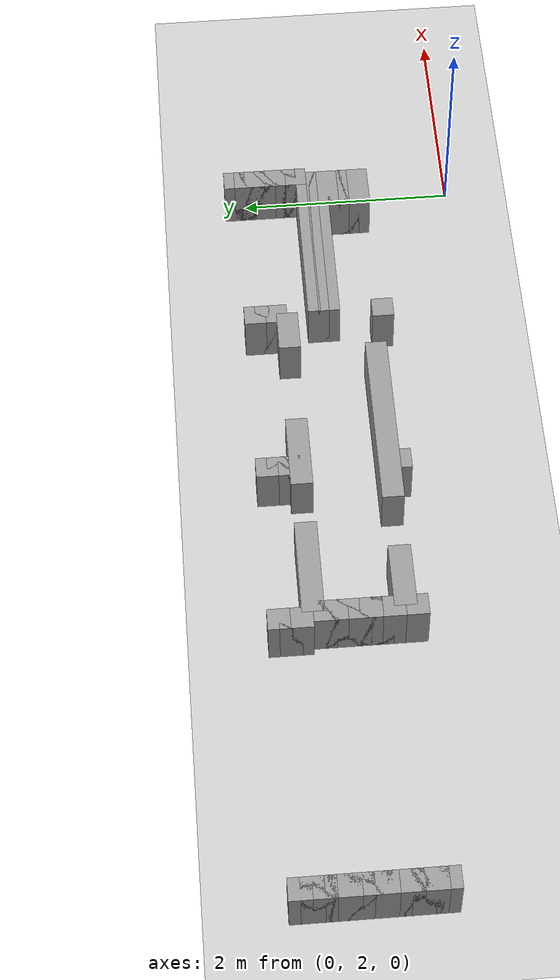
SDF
<sdf version="1.6">
 <world name="GridMap">
  <include><uri>model://sun</uri></include>
  <include><uri>model://ground_plane</uri></include>
  <model name="GridMap">
   <link name="Wall_(17.0,28.0)">
    <collision name="Wall_(17.0,28.0)_Collision">
     <geometry><box><size>0.2 0.2 0.5</size></box></geometry>
     <pose>-1.7000000000000002 2.8000000000000003 0.25 0 -0 0</pose>
    </collision>
    <inertial>
     <mass>0.5</mass>
     <pose>0 0.01 0 0 0 0</pose>
     <inertia><ixx>0.004</ixx><ixy>0.001</ixy><ixz>0</ixz><iyy>0.006</iyy><iyz>0</iyz><izz>0.007</izz></inertia>
    </inertial>
    <visual name="Wall_(17.0,28.0)_Visual">
     <geometry><box><size>0.2 0.2 0.5</size></box></geometry>
     <pose>-1.7000000000000002 2.8000000000000003 0.25 0 -0 0</pose>
     <material>
      <script><uri>file://media/materials/scripts/gazebo.material</uri><name>Gazebo/Grey</name></script>
      <ambient>1 1 1 1</ambient>
     </material>
     <meta><layer>0</layer></meta>
    </visual>
   </link>
   <link name="Wall_(34.0,28.0)">
    <collision name="Wall_(34.0,28.0)_Collision">
     <geometry><box><size>0.2 0.2 0.5</size></box></geometry>
     <pose>-3.4000000000000004 2.8000000000000003 0.25 0 -0 0</pose>
    </collision>
    <inertial>
     <mass>0.5</mass>
     <pose>0 0.01 0 0 0 0</pose>
     <inertia><ixx>0.004</ixx><ixy>0.001</ixy><ixz>0</ixz><iyy>0.006</iyy><iyz>0</iyz><izz>0.007</izz></inertia>
    </inertial>
    <visual name="Wall_(34.0,28.0)_Visual">
     <geometry><box><size>0.2 0.2 0.5</size></box></geometry>
     <pose>-3.4000000000000004 2.8000000000000003 0.25 0 -0 0</pose>
     <material>
      <script><uri>file://media/materials/scripts/gazebo.material</uri><name>Gazebo/Grey</name></script>
      <ambient>1 1 1 1</ambient>
     </material>
     <meta><layer>0</layer></meta>
    </visual>
   </link>
   <link name="Wall_(49.0,28.0)">
    <collision name="Wall_(49.0,28.0)_Collision">
     <geometry><box><size>0.2 0.2 0.5</size></box></geometry>
     <pose>-4.9 2.8000000000000003 0.25 0 -0 0</pose>
    </collision>
    <inertial>
     <mass>0.5</mass>
     <pose>0 0.01 0 0 0 0</pose>
     <inertia><ixx>0.004</ixx><ixy>0.001</ixy><ixz>0</ixz><iyy>0.006</iyy><iyz>0</iyz><izz>0.007</izz></inertia>
    </inertial>
    <visual name="Wall_(49.0,28.0)_Visual">
     <geometry><box><size>0.2 0.2 0.5</size></box></geometry>
     <pose>-4.9 2.8000000000000003 0.25 0 -0 0</pose>
     <material>
      <script><uri>file://media/materials/scripts/gazebo.material</uri><name>Gazebo/Grey</name></script>
      <ambient>1 1 1 1</ambient>
     </material>
     <meta><layer>0</layer></meta>
    </visual>
   </link>
   <link name="Wall_(74.0,28.0)">
    <collision name="Wall_(74.0,28.0)_Collision">
     <geometry><box><size>0.2 0.2 0.5</size></box></geometry>
     <pose>-7.4 2.8000000000000003 0.25 0 -0 0</pose>
    </collision>
    <inertial>
     <mass>0.5</mass>
     <pose>0 0.01 0 0 0 0</pose>
     <inertia><ixx>0.004</ixx><ixy>0.001</ixy><ixz>0</ixz><iyy>0.006</iyy><iyz>0</iyz><izz>0.007</izz></inertia>
    </inertial>
    <visual name="Wall_(74.0,28.0)_Visual">
     <geometry><box><size>0.2 0.2 0.5</size></box></geometry>
     <pose>-7.4 2.8000000000000003 0.25 0 -0 0</pose>
     <material>
      <script><uri>file://media/materials/scripts/gazebo.material</uri><name>Gazebo/Grey</name></script>
      <ambient>1 1 1 1</ambient>
     </material>
     <meta><layer>0</layer></meta>
    </visual>
   </link>
   <link name="Wall_(2.0,29.0)">
    <collision name="Wall_(2.0,29.0)_Collision">
     <geometry><box><size>0.4 0.2 0.5</size></box></geometry>
     <pose>-0.2 2.9000000000000004 0.25 0 -0 0</pose>
    </collision>
    <inertial>
     <mass>0.5</mass>
     <pose>0 0.01 0 0 0 0</pose>
     <inertia><ixx>0.004</ixx><ixy>0.001</ixy><ixz>0</ixz><iyy>0.006</iyy><iyz>0</iyz><izz>0.007</izz></inertia>
    </inertial>
    <visual name="Wall_(2.0,29.0)_Visual">
     <geometry><box><size>0.4 0.2 0.5</size></box></geometry>
     <pose>-0.2 2.9000000000000004 0.25 0 -0 0</pose>
     <material>
      <script><uri>file://media/materials/scripts/gazebo.material</uri><name>Gazebo/Grey</name></script>
      <ambient>1 1 1 1</ambient>
     </material>
     <meta><layer>0</layer></meta>
    </visual>
   </link>
   <link name="Wall_(29.5,29.0)">
    <collision name="Wall_(29.5,29.0)_Collision">
     <geometry><box><size>1.7000000000000002 0.2 0.5</size></box></geometry>
     <pose>-2.95 2.9000000000000004 0.25 0 -0 0</pose>
    </collision>
    <inertial>
     <mass>0.5</mass>
     <pose>0 0.01 0 0 0 0</pose>
     <inertia><ixx>0.004</ixx><ixy>0.001</ixy><ixz>0</ixz><iyy>0.006</iyy><iyz>0</iyz><izz>0.007</izz></inertia>
    </inertial>
    <visual name="Wall_(29.5,29.0)_Visual">
     <geometry><box><size>1.7000000000000002 0.2 0.5</size></box></geometry>
     <pose>-2.95 2.9000000000000004 0.25 0 -0 0</pose>
     <material>
      <script><uri>file://media/materials/scripts/gazebo.material</uri><name>Gazebo/Grey</name></script>
      <ambient>1 1 1 1</ambient>
     </material>
     <meta><layer>0</layer></meta>
    </visual>
   </link>
   <link name="Wall_(46.0,29.0)">
    <collision name="Wall_(46.0,29.0)_Collision">
     <geometry><box><size>0.6000000000000001 0.2 0.5</size></box></geometry>
     <pose>-4.6000000000000005 2.9000000000000004 0.25 0 -0 0</pose>
    </collision>
    <inertial>
     <mass>0.5</mass>
     <pose>0 0.01 0 0 0 0</pose>
     <inertia><ixx>0.004</ixx><ixy>0.001</ixy><ixz>0</ixz><iyy>0.006</iyy><iyz>0</iyz><izz>0.007</izz></inertia>
    </inertial>
    <visual name="Wall_(46.0,29.0)_Visual">
     <geometry><box><size>0.6000000000000001 0.2 0.5</size></box></geometry>
     <pose>-4.6000000000000005 2.9000000000000004 0.25 0 -0 0</pose>
     <material>
      <script><uri>file://media/materials/scripts/gazebo.material</uri><name>Gazebo/Grey</name></script>
      <ambient>1 1 1 1</ambient>
     </material>
     <meta><layer>0</layer></meta>
    </visual>
   </link>
   <link name="Wall_(74.0,29.0)">
    <collision name="Wall_(74.0,29.0)_Collision">
     <geometry><box><size>0.2 0.2 0.5</size></box></geometry>
     <pose>-7.4 2.9000000000000004 0.25 0 -0 0</pose>
    </collision>
    <inertial>
     <mass>0.5</mass>
     <pose>0 0.01 0 0 0 0</pose>
     <inertia><ixx>0.004</ixx><ixy>0.001</ixy><ixz>0</ixz><iyy>0.006</iyy><iyz>0</iyz><izz>0.007</izz></inertia>
    </inertial>
    <visual name="Wall_(74.0,29.0)_Visual">
     <geometry><box><size>0.2 0.2 0.5</size></box></geometry>
     <pose>-7.4 2.9000000000000004 0.25 0 -0 0</pose>
     <material>
      <script><uri>file://media/materials/scripts/gazebo.material</uri><name>Gazebo/Grey</name></script>
      <ambient>1 1 1 1</ambient>
     </material>
     <meta><layer>0</layer></meta>
    </visual>
   </link>
   <link name="Wall_(2.0,30.0)">
    <collision name="Wall_(2.0,30.0)_Collision">
     <geometry><box><size>0.4 0.2 0.5</size></box></geometry>
     <pose>-0.2 3.0 0.25 0 -0 0</pose>
    </collision>
    <inertial>
     <mass>0.5</mass>
     <pose>0 0.01 0 0 0 0</pose>
     <inertia><ixx>0.004</ixx><ixy>0.001</ixy><ixz>0</ixz><iyy>0.006</iyy><iyz>0</iyz><izz>0.007</izz></inertia>
    </inertial>
    <visual name="Wall_(2.0,30.0)_Visual">
     <geometry><box><size>0.4 0.2 0.5</size></box></geometry>
     <pose>-0.2 3.0 0.25 0 -0 0</pose>
     <material>
      <script><uri>file://media/materials/scripts/gazebo.material</uri><name>Gazebo/Grey</name></script>
      <ambient>1 1 1 1</ambient>
     </material>
     <meta><layer>0</layer></meta>
    </visual>
   </link>
   <link name="Wall_(49.0,30.0)">
    <collision name="Wall_(49.0,30.0)_Collision">
     <geometry><box><size>0.2 0.2 0.5</size></box></geometry>
     <pose>-4.9 3.0 0.25 0 -0 0</pose>
    </collision>
    <inertial>
     <mass>0.5</mass>
     <pose>0 0.01 0 0 0 0</pose>
     <inertia><ixx>0.004</ixx><ixy>0.001</ixy><ixz>0</ixz><iyy>0.006</iyy><iyz>0</iyz><izz>0.007</izz></inertia>
    </inertial>
    <visual name="Wall_(49.0,30.0)_Visual">
     <geometry><box><size>0.2 0.2 0.5</size></box></geometry>
     <pose>-4.9 3.0 0.25 0 -0 0</pose>
     <material>
      <script><uri>file://media/materials/scripts/gazebo.material</uri><name>Gazebo/Grey</name></script>
      <ambient>1 1 1 1</ambient>
     </material>
     <meta><layer>0</layer></meta>
    </visual>
   </link>
   <link name="Wall_(74.0,30.0)">
    <collision name="Wall_(74.0,30.0)_Collision">
     <geometry><box><size>0.2 0.2 0.5</size></box></geometry>
     <pose>-7.4 3.0 0.25 0 -0 0</pose>
    </collision>
    <inertial>
     <mass>0.5</mass>
     <pose>0 0.01 0 0 0 0</pose>
     <inertia><ixx>0.004</ixx><ixy>0.001</ixy><ixz>0</ixz><iyy>0.006</iyy><iyz>0</iyz><izz>0.007</izz></inertia>
    </inertial>
    <visual name="Wall_(74.0,30.0)_Visual">
     <geometry><box><size>0.2 0.2 0.5</size></box></geometry>
     <pose>-7.4 3.0 0.25 0 -0 0</pose>
     <material>
      <script><uri>file://media/materials/scripts/gazebo.material</uri><name>Gazebo/Grey</name></script>
      <ambient>1 1 1 1</ambient>
     </material>
     <meta><layer>0</layer></meta>
    </visual>
   </link>
   <link name="Wall_(2.0,31.0)">
    <collision name="Wall_(2.0,31.0)_Collision">
     <geometry><box><size>0.4 0.2 0.5</size></box></geometry>
     <pose>-0.2 3.1 0.25 0 -0 0</pose>
    </collision>
    <inertial>
     <mass>0.5</mass>
     <pose>0 0.01 0 0 0 0</pose>
     <inertia><ixx>0.004</ixx><ixy>0.001</ixy><ixz>0</ixz><iyy>0.006</iyy><iyz>0</iyz><izz>0.007</izz></inertia>
    </inertial>
    <visual name="Wall_(2.0,31.0)_Visual">
     <geometry><box><size>0.4 0.2 0.5</size></box></geometry>
     <pose>-0.2 3.1 0.25 0 -0 0</pose>
     <material>
      <script><uri>file://media/materials/scripts/gazebo.material</uri><name>Gazebo/Grey</name></script>
      <ambient>1 1 1 1</ambient>
     </material>
     <meta><layer>0</layer></meta>
    </visual>
   </link>
   <link name="Wall_(49.0,31.0)">
    <collision name="Wall_(49.0,31.0)_Collision">
     <geometry><box><size>0.2 0.2 0.5</size></box></geometry>
     <pose>-4.9 3.1 0.25 0 -0 0</pose>
    </collision>
    <inertial>
     <mass>0.5</mass>
     <pose>0 0.01 0 0 0 0</pose>
     <inertia><ixx>0.004</ixx><ixy>0.001</ixy><ixz>0</ixz><iyy>0.006</iyy><iyz>0</iyz><izz>0.007</izz></inertia>
    </inertial>
    <visual name="Wall_(49.0,31.0)_Visual">
     <geometry><box><size>0.2 0.2 0.5</size></box></geometry>
     <pose>-4.9 3.1 0.25 0 -0 0</pose>
     <material>
      <script><uri>file://media/materials/scripts/gazebo.material</uri><name>Gazebo/Grey</name></script>
      <ambient>1 1 1 1</ambient>
     </material>
     <meta><layer>0</layer></meta>
    </visual>
   </link>
   <link name="Wall_(74.0,31.0)">
    <collision name="Wall_(74.0,31.0)_Collision">
     <geometry><box><size>0.2 0.2 0.5</size></box></geometry>
     <pose>-7.4 3.1 0.25 0 -0 0</pose>
    </collision>
    <inertial>
     <mass>0.5</mass>
     <pose>0 0.01 0 0 0 0</pose>
     <inertia><ixx>0.004</ixx><ixy>0.001</ixy><ixz>0</ixz><iyy>0.006</iyy><iyz>0</iyz><izz>0.007</izz></inertia>
    </inertial>
    <visual name="Wall_(74.0,31.0)_Visual">
     <geometry><box><size>0.2 0.2 0.5</size></box></geometry>
     <pose>-7.4 3.1 0.25 0 -0 0</pose>
     <material>
      <script><uri>file://media/materials/scripts/gazebo.material</uri><name>Gazebo/Grey</name></script>
      <ambient>1 1 1 1</ambient>
     </material>
     <meta><layer>0</layer></meta>
    </visual>
   </link>
   <link name="Wall_(2.0,32.0)">
    <collision name="Wall_(2.0,32.0)_Collision">
     <geometry><box><size>0.4 0.2 0.5</size></box></geometry>
     <pose>-0.2 3.2 0.25 0 -0 0</pose>
    </collision>
    <inertial>
     <mass>0.5</mass>
     <pose>0 0.01 0 0 0 0</pose>
     <inertia><ixx>0.004</ixx><ixy>0.001</ixy><ixz>0</ixz><iyy>0.006</iyy><iyz>0</iyz><izz>0.007</izz></inertia>
    </inertial>
    <visual name="Wall_(2.0,32.0)_Visual">
     <geometry><box><size>0.4 0.2 0.5</size></box></geometry>
     <pose>-0.2 3.2 0.25 0 -0 0</pose>
     <material>
      <script><uri>file://media/materials/scripts/gazebo.material</uri><name>Gazebo/Grey</name></script>
      <ambient>1 1 1 1</ambient>
     </material>
     <meta><layer>0</layer></meta>
    </visual>
   </link>
   <link name="Wall_(49.0,32.0)">
    <collision name="Wall_(49.0,32.0)_Collision">
     <geometry><box><size>0.2 0.2 0.5</size></box></geometry>
     <pose>-4.9 3.2 0.25 0 -0 0</pose>
    </collision>
    <inertial>
     <mass>0.5</mass>
     <pose>0 0.01 0 0 0 0</pose>
     <inertia><ixx>0.004</ixx><ixy>0.001</ixy><ixz>0</ixz><iyy>0.006</iyy><iyz>0</iyz><izz>0.007</izz></inertia>
    </inertial>
    <visual name="Wall_(49.0,32.0)_Visual">
     <geometry><box><size>0.2 0.2 0.5</size></box></geometry>
     <pose>-4.9 3.2 0.25 0 -0 0</pose>
     <material>
      <script><uri>file://media/materials/scripts/gazebo.material</uri><name>Gazebo/Grey</name></script>
      <ambient>1 1 1 1</ambient>
     </material>
     <meta><layer>0</layer></meta>
    </visual>
   </link>
   <link name="Wall_(74.0,32.0)">
    <collision name="Wall_(74.0,32.0)_Collision">
     <geometry><box><size>0.2 0.2 0.5</size></box></geometry>
     <pose>-7.4 3.2 0.25 0 -0 0</pose>
    </collision>
    <inertial>
     <mass>0.5</mass>
     <pose>0 0.01 0 0 0 0</pose>
     <inertia><ixx>0.004</ixx><ixy>0.001</ixy><ixz>0</ixz><iyy>0.006</iyy><iyz>0</iyz><izz>0.007</izz></inertia>
    </inertial>
    <visual name="Wall_(74.0,32.0)_Visual">
     <geometry><box><size>0.2 0.2 0.5</size></box></geometry>
     <pose>-7.4 3.2 0.25 0 -0 0</pose>
     <material>
      <script><uri>file://media/materials/scripts/gazebo.material</uri><name>Gazebo/Grey</name></script>
      <ambient>1 1 1 1</ambient>
     </material>
     <meta><layer>0</layer></meta>
    </visual>
   </link>
   <link name="Wall_(8.5,33.0)">
    <collision name="Wall_(8.5,33.0)_Collision">
     <geometry><box><size>1.7000000000000002 0.2 0.5</size></box></geometry>
     <pose>-0.8500000000000001 3.3000000000000003 0.25 0 -0 0</pose>
    </collision>
    <inertial>
     <mass>0.5</mass>
     <pose>0 0.01 0 0 0 0</pose>
     <inertia><ixx>0.004</ixx><ixy>0.001</ixy><ixz>0</ixz><iyy>0.006</iyy><iyz>0</iyz><izz>0.007</izz></inertia>
    </inertial>
    <visual name="Wall_(8.5,33.0)_Visual">
     <geometry><box><size>1.7000000000000002 0.2 0.5</size></box></geometry>
     <pose>-0.8500000000000001 3.3000000000000003 0.25 0 -0 0</pose>
     <material>
      <script><uri>file://media/materials/scripts/gazebo.material</uri><name>Gazebo/Grey</name></script>
      <ambient>1 1 1 1</ambient>
     </material>
     <meta><layer>0</layer></meta>
    </visual>
   </link>
   <link name="Wall_(49.0,33.0)">
    <collision name="Wall_(49.0,33.0)_Collision">
     <geometry><box><size>0.2 0.2 0.5</size></box></geometry>
     <pose>-4.9 3.3000000000000003 0.25 0 -0 0</pose>
    </collision>
    <inertial>
     <mass>0.5</mass>
     <pose>0 0.01 0 0 0 0</pose>
     <inertia><ixx>0.004</ixx><ixy>0.001</ixy><ixz>0</ixz><iyy>0.006</iyy><iyz>0</iyz><izz>0.007</izz></inertia>
    </inertial>
    <visual name="Wall_(49.0,33.0)_Visual">
     <geometry><box><size>0.2 0.2 0.5</size></box></geometry>
     <pose>-4.9 3.3000000000000003 0.25 0 -0 0</pose>
     <material>
      <script><uri>file://media/materials/scripts/gazebo.material</uri><name>Gazebo/Grey</name></script>
      <ambient>1 1 1 1</ambient>
     </material>
     <meta><layer>0</layer></meta>
    </visual>
   </link>
   <link name="Wall_(74.0,33.0)">
    <collision name="Wall_(74.0,33.0)_Collision">
     <geometry><box><size>0.2 0.2 0.5</size></box></geometry>
     <pose>-7.4 3.3000000000000003 0.25 0 -0 0</pose>
    </collision>
    <inertial>
     <mass>0.5</mass>
     <pose>0 0.01 0 0 0 0</pose>
     <inertia><ixx>0.004</ixx><ixy>0.001</ixy><ixz>0</ixz><iyy>0.006</iyy><iyz>0</iyz><izz>0.007</izz></inertia>
    </inertial>
    <visual name="Wall_(74.0,33.0)_Visual">
     <geometry><box><size>0.2 0.2 0.5</size></box></geometry>
     <pose>-7.4 3.3000000000000003 0.25 0 -0 0</pose>
     <material>
      <script><uri>file://media/materials/scripts/gazebo.material</uri><name>Gazebo/Grey</name></script>
      <ambient>1 1 1 1</ambient>
     </material>
     <meta><layer>0</layer></meta>
    </visual>
   </link>
   <link name="Wall_(8.5,34.0)">
    <collision name="Wall_(8.5,34.0)_Collision">
     <geometry><box><size>1.7000000000000002 0.2 0.5</size></box></geometry>
     <pose>-0.8500000000000001 3.4000000000000004 0.25 0 -0 0</pose>
    </collision>
    <inertial>
     <mass>0.5</mass>
     <pose>0 0.01 0 0 0 0</pose>
     <inertia><ixx>0.004</ixx><ixy>0.001</ixy><ixz>0</ixz><iyy>0.006</iyy><iyz>0</iyz><izz>0.007</izz></inertia>
    </inertial>
    <visual name="Wall_(8.5,34.0)_Visual">
     <geometry><box><size>1.7000000000000002 0.2 0.5</size></box></geometry>
     <pose>-0.8500000000000001 3.4000000000000004 0.25 0 -0 0</pose>
     <material>
      <script><uri>file://media/materials/scripts/gazebo.material</uri><name>Gazebo/Grey</name></script>
      <ambient>1 1 1 1</ambient>
     </material>
     <meta><layer>0</layer></meta>
    </visual>
   </link>
   <link name="Wall_(49.0,34.0)">
    <collision name="Wall_(49.0,34.0)_Collision">
     <geometry><box><size>0.2 0.2 0.5</size></box></geometry>
     <pose>-4.9 3.4000000000000004 0.25 0 -0 0</pose>
    </collision>
    <inertial>
     <mass>0.5</mass>
     <pose>0 0.01 0 0 0 0</pose>
     <inertia><ixx>0.004</ixx><ixy>0.001</ixy><ixz>0</ixz><iyy>0.006</iyy><iyz>0</iyz><izz>0.007</izz></inertia>
    </inertial>
    <visual name="Wall_(49.0,34.0)_Visual">
     <geometry><box><size>0.2 0.2 0.5</size></box></geometry>
     <pose>-4.9 3.4000000000000004 0.25 0 -0 0</pose>
     <material>
      <script><uri>file://media/materials/scripts/gazebo.material</uri><name>Gazebo/Grey</name></script>
      <ambient>1 1 1 1</ambient>
     </material>
     <meta><layer>0</layer></meta>
    </visual>
   </link>
   <link name="Wall_(74.0,34.0)">
    <collision name="Wall_(74.0,34.0)_Collision">
     <geometry><box><size>0.2 0.2 0.5</size></box></geometry>
     <pose>-7.4 3.4000000000000004 0.25 0 -0 0</pose>
    </collision>
    <inertial>
     <mass>0.5</mass>
     <pose>0 0.01 0 0 0 0</pose>
     <inertia><ixx>0.004</ixx><ixy>0.001</ixy><ixz>0</ixz><iyy>0.006</iyy><iyz>0</iyz><izz>0.007</izz></inertia>
    </inertial>
    <visual name="Wall_(74.0,34.0)_Visual">
     <geometry><box><size>0.2 0.2 0.5</size></box></geometry>
     <pose>-7.4 3.4000000000000004 0.25 0 -0 0</pose>
     <material>
      <script><uri>file://media/materials/scripts/gazebo.material</uri><name>Gazebo/Grey</name></script>
      <ambient>1 1 1 1</ambient>
     </material>
     <meta><layer>0</layer></meta>
    </visual>
   </link>
   <link name="Wall_(0.5,35.0)">
    <collision name="Wall_(0.5,35.0)_Collision">
     <geometry><box><size>0.2 0.2 0.5</size></box></geometry>
     <pose>-0.05 3.5 0.25 0 -0 0</pose>
    </collision>
    <inertial>
     <mass>0.5</mass>
     <pose>0 0.01 0 0 0 0</pose>
     <inertia><ixx>0.004</ixx><ixy>0.001</ixy><ixz>0</ixz><iyy>0.006</iyy><iyz>0</iyz><izz>0.007</izz></inertia>
    </inertial>
    <visual name="Wall_(0.5,35.0)_Visual">
     <geometry><box><size>0.2 0.2 0.5</size></box></geometry>
     <pose>-0.05 3.5 0.25 0 -0 0</pose>
     <material>
      <script><uri>file://media/materials/scripts/gazebo.material</uri><name>Gazebo/Grey</name></script>
      <ambient>1 1 1 1</ambient>
     </material>
     <meta><layer>0</layer></meta>
    </visual>
   </link>
   <link name="Wall_(49.0,35.0)">
    <collision name="Wall_(49.0,35.0)_Collision">
     <geometry><box><size>0.2 0.2 0.5</size></box></geometry>
     <pose>-4.9 3.5 0.25 0 -0 0</pose>
    </collision>
    <inertial>
     <mass>0.5</mass>
     <pose>0 0.01 0 0 0 0</pose>
     <inertia><ixx>0.004</ixx><ixy>0.001</ixy><ixz>0</ixz><iyy>0.006</iyy><iyz>0</iyz><izz>0.007</izz></inertia>
    </inertial>
    <visual name="Wall_(49.0,35.0)_Visual">
     <geometry><box><size>0.2 0.2 0.5</size></box></geometry>
     <pose>-4.9 3.5 0.25 0 -0 0</pose>
     <material>
      <script><uri>file://media/materials/scripts/gazebo.material</uri><name>Gazebo/Grey</name></script>
      <ambient>1 1 1 1</ambient>
     </material>
     <meta><layer>0</layer></meta>
    </visual>
   </link>
   <link name="Wall_(74.0,35.0)">
    <collision name="Wall_(74.0,35.0)_Collision">
     <geometry><box><size>0.2 0.2 0.5</size></box></geometry>
     <pose>-7.4 3.5 0.25 0 -0 0</pose>
    </collision>
    <inertial>
     <mass>0.5</mass>
     <pose>0 0.01 0 0 0 0</pose>
     <inertia><ixx>0.004</ixx><ixy>0.001</ixy><ixz>0</ixz><iyy>0.006</iyy><iyz>0</iyz><izz>0.007</izz></inertia>
    </inertial>
    <visual name="Wall_(74.0,35.0)_Visual">
     <geometry><box><size>0.2 0.2 0.5</size></box></geometry>
     <pose>-7.4 3.5 0.25 0 -0 0</pose>
     <material>
      <script><uri>file://media/materials/scripts/gazebo.material</uri><name>Gazebo/Grey</name></script>
      <ambient>1 1 1 1</ambient>
     </material>
     <meta><layer>0</layer></meta>
    </visual>
   </link>
   <link name="Wall_(0.5,36.0)">
    <collision name="Wall_(0.5,36.0)_Collision">
     <geometry><box><size>0.2 0.2 0.5</size></box></geometry>
     <pose>-0.05 3.6 0.25 0 -0 0</pose>
    </collision>
    <inertial>
     <mass>0.5</mass>
     <pose>0 0.01 0 0 0 0</pose>
     <inertia><ixx>0.004</ixx><ixy>0.001</ixy><ixz>0</ixz><iyy>0.006</iyy><iyz>0</iyz><izz>0.007</izz></inertia>
    </inertial>
    <visual name="Wall_(0.5,36.0)_Visual">
     <geometry><box><size>0.2 0.2 0.5</size></box></geometry>
     <pose>-0.05 3.6 0.25 0 -0 0</pose>
     <material>
      <script><uri>file://media/materials/scripts/gazebo.material</uri><name>Gazebo/Grey</name></script>
      <ambient>1 1 1 1</ambient>
     </material>
     <meta><layer>0</layer></meta>
    </visual>
   </link>
   <link name="Wall_(49.0,36.0)">
    <collision name="Wall_(49.0,36.0)_Collision">
     <geometry><box><size>0.2 0.2 0.5</size></box></geometry>
     <pose>-4.9 3.6 0.25 0 -0 0</pose>
    </collision>
    <inertial>
     <mass>0.5</mass>
     <pose>0 0.01 0 0 0 0</pose>
     <inertia><ixx>0.004</ixx><ixy>0.001</ixy><ixz>0</ixz><iyy>0.006</iyy><iyz>0</iyz><izz>0.007</izz></inertia>
    </inertial>
    <visual name="Wall_(49.0,36.0)_Visual">
     <geometry><box><size>0.2 0.2 0.5</size></box></geometry>
     <pose>-4.9 3.6 0.25 0 -0 0</pose>
     <material>
      <script><uri>file://media/materials/scripts/gazebo.material</uri><name>Gazebo/Grey</name></script>
      <ambient>1 1 1 1</ambient>
     </material>
     <meta><layer>0</layer></meta>
    </visual>
   </link>
   <link name="Wall_(74.0,36.0)">
    <collision name="Wall_(74.0,36.0)_Collision">
     <geometry><box><size>0.2 0.2 0.5</size></box></geometry>
     <pose>-7.4 3.6 0.25 0 -0 0</pose>
    </collision>
    <inertial>
     <mass>0.5</mass>
     <pose>0 0.01 0 0 0 0</pose>
     <inertia><ixx>0.004</ixx><ixy>0.001</ixy><ixz>0</ixz><iyy>0.006</iyy><iyz>0</iyz><izz>0.007</izz></inertia>
    </inertial>
    <visual name="Wall_(74.0,36.0)_Visual">
     <geometry><box><size>0.2 0.2 0.5</size></box></geometry>
     <pose>-7.4 3.6 0.25 0 -0 0</pose>
     <material>
      <script><uri>file://media/materials/scripts/gazebo.material</uri><name>Gazebo/Grey</name></script>
      <ambient>1 1 1 1</ambient>
     </material>
     <meta><layer>0</layer></meta>
    </visual>
   </link>
   <link name="Wall_(0.5,37.0)">
    <collision name="Wall_(0.5,37.0)_Collision">
     <geometry><box><size>0.2 0.2 0.5</size></box></geometry>
     <pose>-0.05 3.7 0.25 0 -0 0</pose>
    </collision>
    <inertial>
     <mass>0.5</mass>
     <pose>0 0.01 0 0 0 0</pose>
     <inertia><ixx>0.004</ixx><ixy>0.001</ixy><ixz>0</ixz><iyy>0.006</iyy><iyz>0</iyz><izz>0.007</izz></inertia>
    </inertial>
    <visual name="Wall_(0.5,37.0)_Visual">
     <geometry><box><size>0.2 0.2 0.5</size></box></geometry>
     <pose>-0.05 3.7 0.25 0 -0 0</pose>
     <material>
      <script><uri>file://media/materials/scripts/gazebo.material</uri><name>Gazebo/Grey</name></script>
      <ambient>1 1 1 1</ambient>
     </material>
     <meta><layer>0</layer></meta>
    </visual>
   </link>
   <link name="Wall_(19.0,37.0)">
    <collision name="Wall_(19.0,37.0)_Collision">
     <geometry><box><size>0.4 0.2 0.5</size></box></geometry>
     <pose>-1.9000000000000001 3.7 0.25 0 -0 0</pose>
    </collision>
    <inertial>
     <mass>0.5</mass>
     <pose>0 0.01 0 0 0 0</pose>
     <inertia><ixx>0.004</ixx><ixy>0.001</ixy><ixz>0</ixz><iyy>0.006</iyy><iyz>0</iyz><izz>0.007</izz></inertia>
    </inertial>
    <visual name="Wall_(19.0,37.0)_Visual">
     <geometry><box><size>0.4 0.2 0.5</size></box></geometry>
     <pose>-1.9000000000000001 3.7 0.25 0 -0 0</pose>
     <material>
      <script><uri>file://media/materials/scripts/gazebo.material</uri><name>Gazebo/Grey</name></script>
      <ambient>1 1 1 1</ambient>
     </material>
     <meta><layer>0</layer></meta>
    </visual>
   </link>
   <link name="Wall_(32.5,37.0)">
    <collision name="Wall_(32.5,37.0)_Collision">
     <geometry><box><size>0.7000000000000001 0.2 0.5</size></box></geometry>
     <pose>-3.25 3.7 0.25 0 -0 0</pose>
    </collision>
    <inertial>
     <mass>0.5</mass>
     <pose>0 0.01 0 0 0 0</pose>
     <inertia><ixx>0.004</ixx><ixy>0.001</ixy><ixz>0</ixz><iyy>0.006</iyy><iyz>0</iyz><izz>0.007</izz></inertia>
    </inertial>
    <visual name="Wall_(32.5,37.0)_Visual">
     <geometry><box><size>0.7000000000000001 0.2 0.5</size></box></geometry>
     <pose>-3.25 3.7 0.25 0 -0 0</pose>
     <material>
      <script><uri>file://media/materials/scripts/gazebo.material</uri><name>Gazebo/Grey</name></script>
      <ambient>1 1 1 1</ambient>
     </material>
     <meta><layer>0</layer></meta>
    </visual>
   </link>
   <link name="Wall_(44.5,37.0)">
    <collision name="Wall_(44.5,37.0)_Collision">
     <geometry><box><size>0.9 0.2 0.5</size></box></geometry>
     <pose>-4.45 3.7 0.25 0 -0 0</pose>
    </collision>
    <inertial>
     <mass>0.5</mass>
     <pose>0 0.01 0 0 0 0</pose>
     <inertia><ixx>0.004</ixx><ixy>0.001</ixy><ixz>0</ixz><iyy>0.006</iyy><iyz>0</iyz><izz>0.007</izz></inertia>
    </inertial>
    <visual name="Wall_(44.5,37.0)_Visual">
     <geometry><box><size>0.9 0.2 0.5</size></box></geometry>
     <pose>-4.45 3.7 0.25 0 -0 0</pose>
     <material>
      <script><uri>file://media/materials/scripts/gazebo.material</uri><name>Gazebo/Grey</name></script>
      <ambient>1 1 1 1</ambient>
     </material>
     <meta><layer>0</layer></meta>
    </visual>
   </link>
   <link name="Wall_(74.0,37.0)">
    <collision name="Wall_(74.0,37.0)_Collision">
     <geometry><box><size>0.2 0.2 0.5</size></box></geometry>
     <pose>-7.4 3.7 0.25 0 -0 0</pose>
    </collision>
    <inertial>
     <mass>0.5</mass>
     <pose>0 0.01 0 0 0 0</pose>
     <inertia><ixx>0.004</ixx><ixy>0.001</ixy><ixz>0</ixz><iyy>0.006</iyy><iyz>0</iyz><izz>0.007</izz></inertia>
    </inertial>
    <visual name="Wall_(74.0,37.0)_Visual">
     <geometry><box><size>0.2 0.2 0.5</size></box></geometry>
     <pose>-7.4 3.7 0.25 0 -0 0</pose>
     <material>
      <script><uri>file://media/materials/scripts/gazebo.material</uri><name>Gazebo/Grey</name></script>
      <ambient>1 1 1 1</ambient>
     </material>
     <meta><layer>0</layer></meta>
    </visual>
   </link>
   <link name="Wall_(0.5,38.0)">
    <collision name="Wall_(0.5,38.0)_Collision">
     <geometry><box><size>0.2 0.2 0.5</size></box></geometry>
     <pose>-0.05 3.8000000000000003 0.25 0 -0 0</pose>
    </collision>
    <inertial>
     <mass>0.5</mass>
     <pose>0 0.01 0 0 0 0</pose>
     <inertia><ixx>0.004</ixx><ixy>0.001</ixy><ixz>0</ixz><iyy>0.006</iyy><iyz>0</iyz><izz>0.007</izz></inertia>
    </inertial>
    <visual name="Wall_(0.5,38.0)_Visual">
     <geometry><box><size>0.2 0.2 0.5</size></box></geometry>
     <pose>-0.05 3.8000000000000003 0.25 0 -0 0</pose>
     <material>
      <script><uri>file://media/materials/scripts/gazebo.material</uri><name>Gazebo/Grey</name></script>
      <ambient>1 1 1 1</ambient>
     </material>
     <meta><layer>0</layer></meta>
    </visual>
   </link>
   <link name="Wall_(17.0,38.0)">
    <collision name="Wall_(17.0,38.0)_Collision">
     <geometry><box><size>0.2 0.2 0.5</size></box></geometry>
     <pose>-1.7000000000000002 3.8000000000000003 0.25 0 -0 0</pose>
    </collision>
    <inertial>
     <mass>0.5</mass>
     <pose>0 0.01 0 0 0 0</pose>
     <inertia><ixx>0.004</ixx><ixy>0.001</ixy><ixz>0</ixz><iyy>0.006</iyy><iyz>0</iyz><izz>0.007</izz></inertia>
    </inertial>
    <visual name="Wall_(17.0,38.0)_Visual">
     <geometry><box><size>0.2 0.2 0.5</size></box></geometry>
     <pose>-1.7000000000000002 3.8000000000000003 0.25 0 -0 0</pose>
     <material>
      <script><uri>file://media/materials/scripts/gazebo.material</uri><name>Gazebo/Grey</name></script>
      <ambient>1 1 1 1</ambient>
     </material>
     <meta><layer>0</layer></meta>
    </visual>
   </link>
   <link name="Wall_(34.0,38.0)">
    <collision name="Wall_(34.0,38.0)_Collision">
     <geometry><box><size>0.2 0.2 0.5</size></box></geometry>
     <pose>-3.4000000000000004 3.8000000000000003 0.25 0 -0 0</pose>
    </collision>
    <inertial>
     <mass>0.5</mass>
     <pose>0 0.01 0 0 0 0</pose>
     <inertia><ixx>0.004</ixx><ixy>0.001</ixy><ixz>0</ixz><iyy>0.006</iyy><iyz>0</iyz><izz>0.007</izz></inertia>
    </inertial>
    <visual name="Wall_(34.0,38.0)_Visual">
     <geometry><box><size>0.2 0.2 0.5</size></box></geometry>
     <pose>-3.4000000000000004 3.8000000000000003 0.25 0 -0 0</pose>
     <material>
      <script><uri>file://media/materials/scripts/gazebo.material</uri><name>Gazebo/Grey</name></script>
      <ambient>1 1 1 1</ambient>
     </material>
     <meta><layer>0</layer></meta>
    </visual>
   </link>
   <link name="Wall_(49.5,38.0)">
    <collision name="Wall_(49.5,38.0)_Collision">
     <geometry><box><size>0.2 0.2 0.5</size></box></geometry>
     <pose>-4.95 3.8000000000000003 0.25 0 -0 0</pose>
    </collision>
    <inertial>
     <mass>0.5</mass>
     <pose>0 0.01 0 0 0 0</pose>
     <inertia><ixx>0.004</ixx><ixy>0.001</ixy><ixz>0</ixz><iyy>0.006</iyy><iyz>0</iyz><izz>0.007</izz></inertia>
    </inertial>
    <visual name="Wall_(49.5,38.0)_Visual">
     <geometry><box><size>0.2 0.2 0.5</size></box></geometry>
     <pose>-4.95 3.8000000000000003 0.25 0 -0 0</pose>
     <material>
      <script><uri>file://media/materials/scripts/gazebo.material</uri><name>Gazebo/Grey</name></script>
      <ambient>1 1 1 1</ambient>
     </material>
     <meta><layer>0</layer></meta>
    </visual>
   </link>
   <link name="Wall_(74.0,38.0)">
    <collision name="Wall_(74.0,38.0)_Collision">
     <geometry><box><size>0.2 0.2 0.5</size></box></geometry>
     <pose>-7.4 3.8000000000000003 0.25 0 -0 0</pose>
    </collision>
    <inertial>
     <mass>0.5</mass>
     <pose>0 0.01 0 0 0 0</pose>
     <inertia><ixx>0.004</ixx><ixy>0.001</ixy><ixz>0</ixz><iyy>0.006</iyy><iyz>0</iyz><izz>0.007</izz></inertia>
    </inertial>
    <visual name="Wall_(74.0,38.0)_Visual">
     <geometry><box><size>0.2 0.2 0.5</size></box></geometry>
     <pose>-7.4 3.8000000000000003 0.25 0 -0 0</pose>
     <material>
      <script><uri>file://media/materials/scripts/gazebo.material</uri><name>Gazebo/Grey</name></script>
      <ambient>1 1 1 1</ambient>
     </material>
     <meta><layer>0</layer></meta>
    </visual>
   </link>
   <link name="Wall_(0.5,39.0)">
    <collision name="Wall_(0.5,39.0)_Collision">
     <geometry><box><size>0.2 0.2 0.5</size></box></geometry>
     <pose>-0.05 3.9000000000000004 0.25 0 -0 0</pose>
    </collision>
    <inertial>
     <mass>0.5</mass>
     <pose>0 0.01 0 0 0 0</pose>
     <inertia><ixx>0.004</ixx><ixy>0.001</ixy><ixz>0</ixz><iyy>0.006</iyy><iyz>0</iyz><izz>0.007</izz></inertia>
    </inertial>
    <visual name="Wall_(0.5,39.0)_Visual">
     <geometry><box><size>0.2 0.2 0.5</size></box></geometry>
     <pose>-0.05 3.9000000000000004 0.25 0 -0 0</pose>
     <material>
      <script><uri>file://media/materials/scripts/gazebo.material</uri><name>Gazebo/Grey</name></script>
      <ambient>1 1 1 1</ambient>
     </material>
     <meta><layer>0</layer></meta>
    </visual>
   </link>
   <link name="Wall_(17.0,39.0)">
    <collision name="Wall_(17.0,39.0)_Collision">
     <geometry><box><size>0.2 0.2 0.5</size></box></geometry>
     <pose>-1.7000000000000002 3.9000000000000004 0.25 0 -0 0</pose>
    </collision>
    <inertial>
     <mass>0.5</mass>
     <pose>0 0.01 0 0 0 0</pose>
     <inertia><ixx>0.004</ixx><ixy>0.001</ixy><ixz>0</ixz><iyy>0.006</iyy><iyz>0</iyz><izz>0.007</izz></inertia>
    </inertial>
    <visual name="Wall_(17.0,39.0)_Visual">
     <geometry><box><size>0.2 0.2 0.5</size></box></geometry>
     <pose>-1.7000000000000002 3.9000000000000004 0.25 0 -0 0</pose>
     <material>
      <script><uri>file://media/materials/scripts/gazebo.material</uri><name>Gazebo/Grey</name></script>
      <ambient>1 1 1 1</ambient>
     </material>
     <meta><layer>0</layer></meta>
    </visual>
   </link>
   <link name="Wall_(34.0,39.0)">
    <collision name="Wall_(34.0,39.0)_Collision">
     <geometry><box><size>0.2 0.2 0.5</size></box></geometry>
     <pose>-3.4000000000000004 3.9000000000000004 0.25 0 -0 0</pose>
    </collision>
    <inertial>
     <mass>0.5</mass>
     <pose>0 0.01 0 0 0 0</pose>
     <inertia><ixx>0.004</ixx><ixy>0.001</ixy><ixz>0</ixz><iyy>0.006</iyy><iyz>0</iyz><izz>0.007</izz></inertia>
    </inertial>
    <visual name="Wall_(34.0,39.0)_Visual">
     <geometry><box><size>0.2 0.2 0.5</size></box></geometry>
     <pose>-3.4000000000000004 3.9000000000000004 0.25 0 -0 0</pose>
     <material>
      <script><uri>file://media/materials/scripts/gazebo.material</uri><name>Gazebo/Grey</name></script>
      <ambient>1 1 1 1</ambient>
     </material>
     <meta><layer>0</layer></meta>
    </visual>
   </link>
   <link name="Wall_(49.5,39.0)">
    <collision name="Wall_(49.5,39.0)_Collision">
     <geometry><box><size>0.2 0.2 0.5</size></box></geometry>
     <pose>-4.95 3.9000000000000004 0.25 0 -0 0</pose>
    </collision>
    <inertial>
     <mass>0.5</mass>
     <pose>0 0.01 0 0 0 0</pose>
     <inertia><ixx>0.004</ixx><ixy>0.001</ixy><ixz>0</ixz><iyy>0.006</iyy><iyz>0</iyz><izz>0.007</izz></inertia>
    </inertial>
    <visual name="Wall_(49.5,39.0)_Visual">
     <geometry><box><size>0.2 0.2 0.5</size></box></geometry>
     <pose>-4.95 3.9000000000000004 0.25 0 -0 0</pose>
     <material>
      <script><uri>file://media/materials/scripts/gazebo.material</uri><name>Gazebo/Grey</name></script>
      <ambient>1 1 1 1</ambient>
     </material>
     <meta><layer>0</layer></meta>
    </visual>
   </link>
   <link name="Wall_(74.0,39.0)">
    <collision name="Wall_(74.0,39.0)_Collision">
     <geometry><box><size>0.2 0.2 0.5</size></box></geometry>
     <pose>-7.4 3.9000000000000004 0.25 0 -0 0</pose>
    </collision>
    <inertial>
     <mass>0.5</mass>
     <pose>0 0.01 0 0 0 0</pose>
     <inertia><ixx>0.004</ixx><ixy>0.001</ixy><ixz>0</ixz><iyy>0.006</iyy><iyz>0</iyz><izz>0.007</izz></inertia>
    </inertial>
    <visual name="Wall_(74.0,39.0)_Visual">
     <geometry><box><size>0.2 0.2 0.5</size></box></geometry>
     <pose>-7.4 3.9000000000000004 0.25 0 -0 0</pose>
     <material>
      <script><uri>file://media/materials/scripts/gazebo.material</uri><name>Gazebo/Grey</name></script>
      <ambient>1 1 1 1</ambient>
     </material>
     <meta><layer>0</layer></meta>
    </visual>
   </link>
   <link name="Wall_(0.5,40.0)">
    <collision name="Wall_(0.5,40.0)_Collision">
     <geometry><box><size>0.2 0.2 0.5</size></box></geometry>
     <pose>-0.05 4.0 0.25 0 -0 0</pose>
    </collision>
    <inertial>
     <mass>0.5</mass>
     <pose>0 0.01 0 0 0 0</pose>
     <inertia><ixx>0.004</ixx><ixy>0.001</ixy><ixz>0</ixz><iyy>0.006</iyy><iyz>0</iyz><izz>0.007</izz></inertia>
    </inertial>
    <visual name="Wall_(0.5,40.0)_Visual">
     <geometry><box><size>0.2 0.2 0.5</size></box></geometry>
     <pose>-0.05 4.0 0.25 0 -0 0</pose>
     <material>
      <script><uri>file://media/materials/scripts/gazebo.material</uri><name>Gazebo/Grey</name></script>
      <ambient>1 1 1 1</ambient>
     </material>
     <meta><layer>0</layer></meta>
    </visual>
   </link>
   <link name="Wall_(17.0,40.0)">
    <collision name="Wall_(17.0,40.0)_Collision">
     <geometry><box><size>0.2 0.2 0.5</size></box></geometry>
     <pose>-1.7000000000000002 4.0 0.25 0 -0 0</pose>
    </collision>
    <inertial>
     <mass>0.5</mass>
     <pose>0 0.01 0 0 0 0</pose>
     <inertia><ixx>0.004</ixx><ixy>0.001</ixy><ixz>0</ixz><iyy>0.006</iyy><iyz>0</iyz><izz>0.007</izz></inertia>
    </inertial>
    <visual name="Wall_(17.0,40.0)_Visual">
     <geometry><box><size>0.2 0.2 0.5</size></box></geometry>
     <pose>-1.7000000000000002 4.0 0.25 0 -0 0</pose>
     <material>
      <script><uri>file://media/materials/scripts/gazebo.material</uri><name>Gazebo/Grey</name></script>
      <ambient>1 1 1 1</ambient>
     </material>
     <meta><layer>0</layer></meta>
    </visual>
   </link>
   <link name="Wall_(34.0,40.0)">
    <collision name="Wall_(34.0,40.0)_Collision">
     <geometry><box><size>0.2 0.2 0.5</size></box></geometry>
     <pose>-3.4000000000000004 4.0 0.25 0 -0 0</pose>
    </collision>
    <inertial>
     <mass>0.5</mass>
     <pose>0 0.01 0 0 0 0</pose>
     <inertia><ixx>0.004</ixx><ixy>0.001</ixy><ixz>0</ixz><iyy>0.006</iyy><iyz>0</iyz><izz>0.007</izz></inertia>
    </inertial>
    <visual name="Wall_(34.0,40.0)_Visual">
     <geometry><box><size>0.2 0.2 0.5</size></box></geometry>
     <pose>-3.4000000000000004 4.0 0.25 0 -0 0</pose>
     <material>
      <script><uri>file://media/materials/scripts/gazebo.material</uri><name>Gazebo/Grey</name></script>
      <ambient>1 1 1 1</ambient>
     </material>
     <meta><layer>0</layer></meta>
    </visual>
   </link>
   <link name="Wall_(49.5,40.0)">
    <collision name="Wall_(49.5,40.0)_Collision">
     <geometry><box><size>0.2 0.2 0.5</size></box></geometry>
     <pose>-4.95 4.0 0.25 0 -0 0</pose>
    </collision>
    <inertial>
     <mass>0.5</mass>
     <pose>0 0.01 0 0 0 0</pose>
     <inertia><ixx>0.004</ixx><ixy>0.001</ixy><ixz>0</ixz><iyy>0.006</iyy><iyz>0</iyz><izz>0.007</izz></inertia>
    </inertial>
    <visual name="Wall_(49.5,40.0)_Visual">
     <geometry><box><size>0.2 0.2 0.5</size></box></geometry>
     <pose>-4.95 4.0 0.25 0 -0 0</pose>
     <material>
      <script><uri>file://media/materials/scripts/gazebo.material</uri><name>Gazebo/Grey</name></script>
      <ambient>1 1 1 1</ambient>
     </material>
     <meta><layer>0</layer></meta>
    </visual>
   </link>
   <link name="Wall_(74.0,40.0)">
    <collision name="Wall_(74.0,40.0)_Collision">
     <geometry><box><size>0.2 0.2 0.5</size></box></geometry>
     <pose>-7.4 4.0 0.25 0 -0 0</pose>
    </collision>
    <inertial>
     <mass>0.5</mass>
     <pose>0 0.01 0 0 0 0</pose>
     <inertia><ixx>0.004</ixx><ixy>0.001</ixy><ixz>0</ixz><iyy>0.006</iyy><iyz>0</iyz><izz>0.007</izz></inertia>
    </inertial>
    <visual name="Wall_(74.0,40.0)_Visual">
     <geometry><box><size>0.2 0.2 0.5</size></box></geometry>
     <pose>-7.4 4.0 0.25 0 -0 0</pose>
     <material>
      <script><uri>file://media/materials/scripts/gazebo.material</uri><name>Gazebo/Grey</name></script>
      <ambient>1 1 1 1</ambient>
     </material>
     <meta><layer>0</layer></meta>
    </visual>
   </link>
   <link name="Wall_(0.5,41.0)">
    <collision name="Wall_(0.5,41.0)_Collision">
     <geometry><box><size>0.2 0.2 0.5</size></box></geometry>
     <pose>-0.05 4.1000000000000005 0.25 0 -0 0</pose>
    </collision>
    <inertial>
     <mass>0.5</mass>
     <pose>0 0.01 0 0 0 0</pose>
     <inertia><ixx>0.004</ixx><ixy>0.001</ixy><ixz>0</ixz><iyy>0.006</iyy><iyz>0</iyz><izz>0.007</izz></inertia>
    </inertial>
    <visual name="Wall_(0.5,41.0)_Visual">
     <geometry><box><size>0.2 0.2 0.5</size></box></geometry>
     <pose>-0.05 4.1000000000000005 0.25 0 -0 0</pose>
     <material>
      <script><uri>file://media/materials/scripts/gazebo.material</uri><name>Gazebo/Grey</name></script>
      <ambient>1 1 1 1</ambient>
     </material>
     <meta><layer>0</layer></meta>
    </visual>
   </link>
   <static>1</static>
  </model>
 </world>
</sdf>
